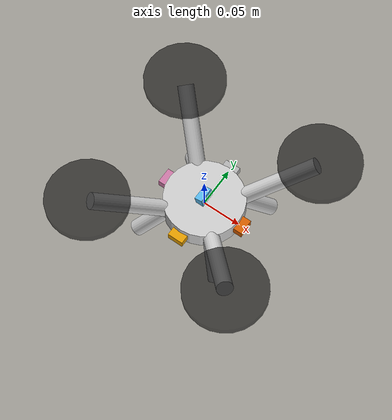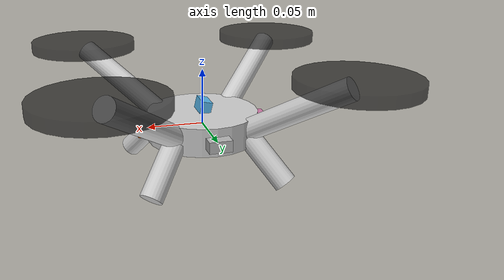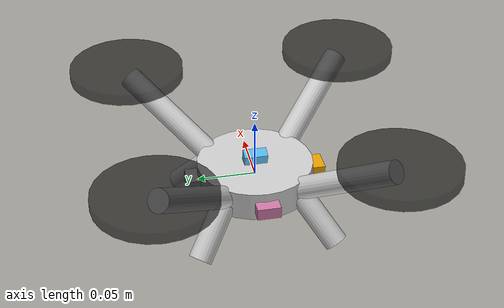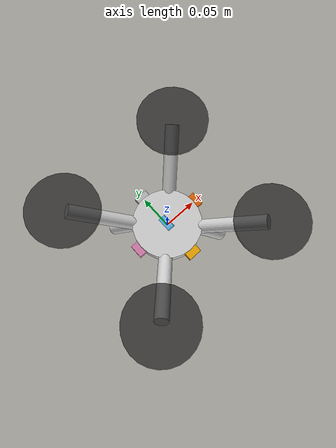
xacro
<?xml version="1.0"?>

<robot xmlns:xacro="http://wiki.ros.org/xacro" name="quadcopter">

  <!-- drone properties -->
  <xacro:property name="frame_radius" value="0.05"/>
  <xacro:property name="frame_height" value="0.025"/>
  <xacro:property name="frame_mass" value="0.34"/>
  <xacro:property name="arm_radius" value="0.01"/>
  <xacro:property name="arm_length" value="0.1"/>
  <xacro:property name="arm_mass" value="0.01"/>
  <xacro:property name="arm_height_offset" value="0.025"/>
  <xacro:property name="arm_angle" value="1.0471975512"/>
  <xacro:property name="arm_pos_radius" value="0.04"/>
  <xacro:property name="propeller_radius" value="0.05"/>
  <xacro:property name="propeller_height" value="0.01"/>
  <xacro:property name="propeller_height_offset" value="0.055"/>
  <xacro:property name="propeller_mass" value="0.01"/>
  <xacro:property name="leg_angle" value="-0.78539816339"/>
  <xacro:property name="leg_radius" value="0.01"/>
  <xacro:property name="leg_length" value="0.05"/>
  <xacro:property name="leg_mass" value="0.01"/>
  <xacro:property name="leg_pos_radius" value="0.04"/>
  <xacro:property name="leg_height_offset" value="-0.025"/>

  <!-- camera properties -->
  <xacro:property name="camera_width" value="0.02"/>
  <xacro:property name="camera_length" value="0.02"/>
  <xacro:property name="camera_height" value="0.01"/>
  <xacro:property name="camera_mass" value="0.01"/>
  <xacro:property name="camera_fov" value="90"/>

  <xacro:macro name="cylinder_inertial" params="radius height mass *origin">
    <inertial>
      <mass value="${mass}"/>
      <xacro:insert_block name="origin"/>
      <inertia
        ixx="${0.0833333 * mass * (3 * radius * radius + height * height)}"
        ixy="0.0"
        ixz="0.0"
        iyy="${0.0833333 * mass * (3 * radius * radius + height * height)}"
        iyz="0.0"
        izz="${0.5 * mass * radius * radius}"
      />
    </inertial>
  </xacro:macro>

  <xacro:macro name="box_inertial" params="name m x y z">
    <inertial name="${name}_inertial">
      <mass value="${m}"/>
      <inertia  ixx="${m*(y*y+z*z)/12}" ixy = "0" ixz = "0"
        iyy="${m*(x*x+y*y)/12}" iyz = "0"
        izz="${m*(x*x+z*z)/12}"/>
    </inertial>
  </xacro:macro>

  <!-- arm macro-->
  <xacro:macro name="arm" params="i">
    <link name="arm${i}">
      <visual>
        <origin xyz="${cos((i-1)*pi/2+pi/4)*(arm_pos_radius+arm_length/2)} ${sin((i-1)*pi/2+pi/4)*(arm_pos_radius+arm_length/2)} ${frame_height/2-arm_radius+arm_height_offset}" rpy="0 ${arm_angle} ${(i-1)*pi/2+pi/4}"/>
        <geometry>
          <cylinder radius="${arm_radius}" length="${arm_length}"/>
        </geometry>
        <material name="arm_material"/>
      </visual>
      <collision>
        <origin xyz="${cos((i-1)*pi/2+pi/4)*(arm_pos_radius+arm_length/2)} ${sin((i-1)*pi/2+pi/4)*(arm_pos_radius+arm_length/2)} ${frame_height/2-arm_radius+arm_height_offset}" rpy="0 ${arm_angle} ${(i-1)*pi/2+pi/4}"/>
        <geometry>
          <cylinder radius="${arm_radius}" length="${arm_length}"/>
        </geometry>
      </collision>
      <xacro:cylinder_inertial radius="${arm_radius}" height="${arm_length}" mass="${arm_mass}">
        <origin xyz="${cos((i-1)*pi/2+pi/4)*(arm_pos_radius+arm_length/2)} ${sin((i-1)*pi/2+pi/4)*(arm_pos_radius+arm_length/2)} ${frame_height/2-arm_radius+arm_height_offset}" rpy="0 ${arm_angle} ${(i-1)*pi/2+pi/4}"/>
      </xacro:cylinder_inertial>
    </link>

    <joint name="frame_arm${i}" type="fixed">
      <parent link="frame"/>
      <child link="arm${i}"/>
    </joint>

    <gazebo reference="arm${i}">
      <material>Gazebo/Grey</material>
    </gazebo>
  </xacro:macro>

  <!-- propellor macro -->
  <xacro:macro name="propeller" params="i mat">
    <link name="propeller${i}">
      <visual>
        <origin xyz="0 0 0" rpy="0 0 0"/>
        <geometry>
          <cylinder radius="${propeller_radius}" length="${propeller_height}"/>
        </geometry>
        <material name="propeller_material"/>
      </visual>
      <collision>
        <origin xyz="0 0 0" rpy="0 0 0"/>
        <geometry>
          <cylinder radius="${propeller_radius}" length="${propeller_height}"/>
        </geometry>
      </collision>
      <xacro:cylinder_inertial radius="${propeller_radius}" height="${propeller_height}" mass="${propeller_mass}">
        <origin xyz="0 0 0" rpy="0 0 0"/>
      </xacro:cylinder_inertial>
    </link>

    <joint name="arm${i}_propeller${i}" type="revolute">
      <parent link="arm${i}"/>
      <child link="propeller${i}"/>
      <origin xyz="${cos((i-1)*pi/2+pi/4)*(frame_radius+arm_length*sin(arm_angle))} ${sin((i-1)*pi/2+pi/4)*(frame_radius+arm_length*sin(arm_angle))} ${frame_height/2-arm_radius+propeller_height_offset}" rpy="0 0 0"/>
      <axis xyz="0 0 1"/>
      <limit lower="0" upper="0" effort="0" velocity="0"/>
    </joint>

    <gazebo reference="propeller${i}">
      <material>${mat}</material>
    </gazebo>
  </xacro:macro>

  <material name="frame_material">
    <color rgba="1 0.2 0.2 1"/>
  </material>

  <material name="arm_material">
    <color rgba="0.8 0.8 0.8 1"/>
  </material>

  <material name="propeller_material">
    <color rgba="0 0 0 0.6"/>
  </material>

  <!-- leg macro-->
  <xacro:macro name="leg" params="i">
    <link name="leg${i}">
      <visual>
        <origin xyz="${cos((i-1)*pi/2+pi/4)*(leg_pos_radius+leg_length/2)} ${sin((i-1)*pi/2+pi/4)*(leg_pos_radius+leg_length/2)} ${frame_height/2-leg_radius+leg_height_offset}" rpy="0 ${leg_angle} ${(i-1)*pi/2+pi/4}"/>
        <geometry>
          <cylinder radius="${leg_radius}" length="${leg_length}"/>
        </geometry>
        <material name="arm_material"/>
      </visual>
      <collision>
        <origin xyz="${cos((i-1)*pi/2+pi/4)*(leg_pos_radius+leg_length/2)} ${sin((i-1)*pi/2+pi/4)*(leg_pos_radius+leg_length/2)} ${frame_height/2-leg_radius+leg_height_offset}" rpy="0 ${leg_angle} ${(i-1)*pi/2+pi/4}"/>
        <geometry>
          <cylinder radius="${leg_radius}" length="${leg_length}"/>
        </geometry>
      </collision>
      <xacro:cylinder_inertial radius="${leg_radius}" height="${leg_length}" mass="${leg_mass}">
        <origin xyz="${cos((i-1)*pi/2+pi/4)*(leg_pos_radius+leg_length/2)} ${sin((i-1)*pi/2+pi/4)*(leg_pos_radius+leg_length/2)} ${frame_height/2-leg_radius+leg_height_offset}" rpy="0 ${leg_angle} ${(i-1)*pi/2+pi/4}"/>
      </xacro:cylinder_inertial>
    </link>

    <joint name="frame_leg${i}" type="fixed">
      <parent link="frame"/>
      <child link="leg${i}"/>
    </joint>

    <gazebo reference="leg${i}">
      <material>Gazebo/Grey</material>
    </gazebo>
  </xacro:macro>

  <!-- frame link -->
  <link name="frame">
    <visual>
      <origin xyz="0 0 0" rpy="0 0 0"/>
      <geometry>
        <cylinder radius="${frame_radius}" length="${frame_height}"/>
      </geometry>
      <material name="frame_material">
        <color rgba="0.8 0.8 0.8 1.0"/>
      </material>
    </visual>
    <collision>
      <origin xyz="0 0 0" rpy="0 0 0"/>
      <geometry>
        <cylinder radius="${frame_radius}" length="${frame_height}"/>
      </geometry>
    </collision>
    <xacro:cylinder_inertial radius="${frame_radius}" height="${frame_height}" mass="${frame_mass}">
      <origin xyz="0 0 0" rpy="0 0 0" />
    </xacro:cylinder_inertial>
  </link>

  <gazebo reference="frame">
    <material>Gazebo/Orange</material>
  </gazebo>

  <!-- camera macro -->
  <xacro:macro name="camera" params="i x y z r p yw w h fov">
    <link name='camera${i}_link'>
      <xacro:box_inertial name="camera${i}_link" m="${camera_mass}" x="${camera_width}" y="${camera_length}" z="${camera_height}"/>
      <collision name='camera${i}_link_collision'>
        <geometry>
          <box size="${camera_length} ${camera_width} ${camera_height}"/>
        </geometry>
      </collision>
      <visual name='camera${i}_link_visual'>
        <origin xyz="0 0 0" rpy="0 0 0"/>
        <geometry>
          <box size="${camera_length} ${camera_width} ${camera_height}"/>
        </geometry>
      </visual>
    </link>

    <joint name="camera${i}_joint" type="fixed">
      <parent link="frame"/>
      <child link="camera${i}_link"/>
      <origin xyz="${x} ${y} ${z}" rpy="${r} ${p} ${yw}"/>
    </joint>

    <gazebo reference="camera${i}_link">
      <sensor type="camera" name="camera${i}">
        <update_rate>30.0</update_rate>
        <camera name="head">
          <horizontal_fov>${fov * pi / 180}</horizontal_fov>
          <image>
            <width>${w}</width>
            <height>${h}</height>
            <format>R8G8B8</format>
          </image>
          <clip>
            <near>0.02</near>
            <far>300</far>
          </clip>
          <noise>
            <type>gaussian</type>
            <!-- Noise is sampled independently per pixel on each frame.
                That pixel's noise value is added to each of its color
                channels, which at that point lie in the range [0,1]. -->
            <mean>0.0</mean>
            <stddev>0.007</stddev>
          </noise>
        </camera>
        <plugin name="camera_controller" filename="libgazebo_ros_camera.so">
          <alwaysOn>true</alwaysOn>
          <updateRate>0.0</updateRate>
          <imageTopicName>image_raw</imageTopicName>
          <cameraInfoTopicName>camera_info</cameraInfoTopicName>
          <cameraName>camera${i}</cameraName>
          <frameName>camera${i}_link</frameName>
          <hackBaseline>0.07</hackBaseline>
          <distortionK1>0.0</distortionK1>
          <distortionK2>0.0</distortionK2>
          <distortionK3>0.0</distortionK3>
          <distortionT1>0.0</distortionT1>
          <distortionT2>0.0</distortionT2>
        </plugin>
      </sensor>
    </gazebo>
  </xacro:macro>

<!-- defining 4 arms, legs and propellors -->
<xacro:arm i="1"/>
<xacro:arm i="2"/>
<xacro:arm i="3"/>
<xacro:arm i="4"/>

<xacro:leg i="1"/>
<xacro:leg i="2"/>
<xacro:leg i="3"/>
<xacro:leg i="4"/>

<xacro:propeller i="1" mat="Gazebo/RedTransparent"/>
<xacro:propeller i="2" mat="Gazebo/RedTransparent"/>
<xacro:propeller i="3" mat="Gazebo/GreenTransparent"/>
<xacro:propeller i="4" mat="Gazebo/GreenTransparent"/>

<!-- defining cameras -->
<xacro:camera i="0" x="${frame_radius}" y="0" z="0" r="0" p="0" yw="0" w="800" h="400" fov = "90"/>
<xacro:camera i="1" x="${-frame_radius}" y="0" z="0" r="0" p="0" yw="${pi}" w="800" h="400" fov = "90"/>
<xacro:camera i="2" x="0" y="${frame_radius}" z="0" r="0" p="0" yw="${pi/2}" w="800" h="400" fov = "90"/>
<xacro:camera i="3" x="0" y="${-frame_radius}" z="0" r="0" p="0" yw="${-pi/2}" w="800" h="400" fov = "90"/>
<xacro:camera i="_top" x="0" y="0" z="${frame_height/2}" r="0" p="-1.8" yw="0" w="256" h="256" fov = "20"/>

  <!-- motor control plugin-->
  <gazebo>
    <plugin name="drone_internals" filename="libdrone_internals.so">
      <updateRate>100</updateRate>
      <publishTf>true</publishTf>
      <rotorThrustCoeff>0.00025</rotorThrustCoeff>
      <rotorTorqueCoeff>0.0000074</rotorTorqueCoeff>
    </plugin>
  </gazebo>

</robot>
